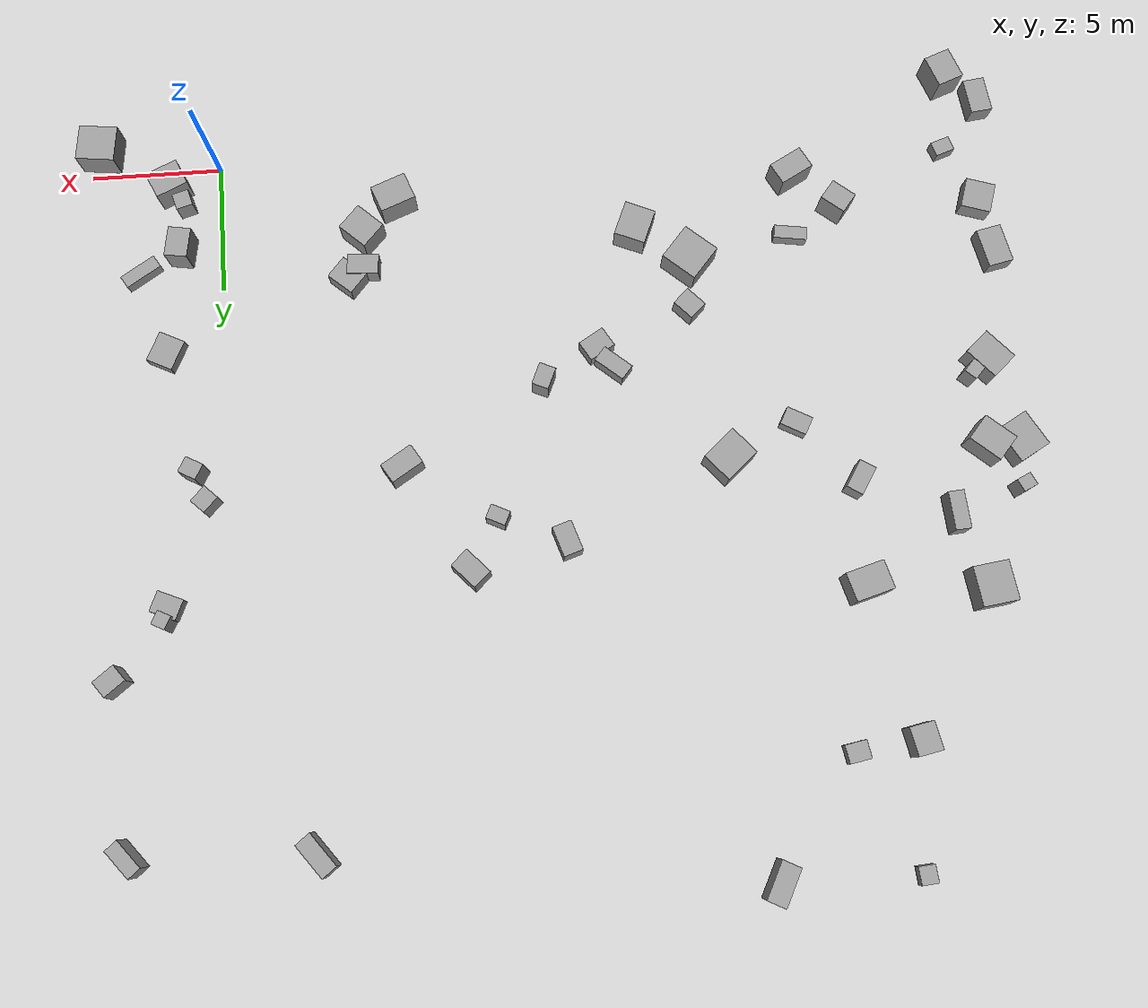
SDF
<sdf version="1.7">
 <world name="default">
  <model name="ground_plane">
   <static>1</static>
   <link name="link">
    <collision name="collision">
     <geometry><plane><normal>0 0 1</normal><size>100 100</size></plane></geometry>
     <surface><friction><ode><mu>100</mu><mu2>50</mu2></ode></friction></surface>
    </collision>
    <visual name="visual">
     <cast_shadows>0</cast_shadows>
     <geometry><plane><normal>0 0 1</normal><size>100 100</size></plane></geometry>
     <material>
      <script><uri>file://media/materials/scripts/gazebo.material</uri><name>Gazebo/Grey</name></script>
     </material>
    </visual>
   </link>
  </model>
  <model name="unit_box_3">
   <static>true</static>
   <pose>-18.853921231633112 28.278634280664065 0.5 0 -0 161.31031445125913</pose>
   <link name="link">
    <inertial>
     <mass>1</mass>
     <inertia>
      <ixx>0.166667</ixx>
      <ixy>0</ixy>
      <ixz>0</ixz>
      <iyy>0.166667</iyy>
      <iyz>0</iyz>
      <izz>0.166667</izz>
     </inertia>
    </inertial>
    <collision name="collision">
     <geometry><box><size>1.4690283998809486 0.7201848135264792 1.498329860531034</size></box></geometry>
    </collision>
    <visual name="visual">
     <geometry><box><size>1.4690283998809486 0.7201848135264792 1.498329860531034</size></box></geometry>
     <material>
      <script><name>Gazebo/Grey</name><uri>file://media/materials/scripts/gazebo.material</uri></script>
     </material>
    </visual>
   </link>
  </model>
  <model name="unit_box_4">
   <static>true</static>
   <pose>-29.22784455926808 3.5906391807255034 0.5 0 -0 254.1489944872461</pose>
   <link name="link">
    <inertial>
     <mass>1</mass>
     <inertia>
      <ixx>0.166667</ixx>
      <ixy>0</ixy>
      <ixz>0</ixz>
      <iyy>0.166667</iyy>
      <iyz>0</iyz>
      <izz>0.166667</izz>
     </inertia>
    </inertial>
    <collision name="collision">
     <geometry><box><size>1.1214604294550323 1.1558776555138264 0.8068584248671594</size></box></geometry>
    </collision>
    <visual name="visual">
     <geometry><box><size>1.1214604294550323 1.1558776555138264 0.8068584248671594</size></box></geometry>
     <material>
      <script><name>Gazebo/Grey</name><uri>file://media/materials/scripts/gazebo.material</uri></script>
     </material>
    </visual>
   </link>
  </model>
  <model name="unit_box_6">
   <static>true</static>
   <pose>-23.114549735129497 18.156944835991993 0.5 0 -0 80.38149467177092</pose>
   <link name="link">
    <inertial>
     <mass>1</mass>
     <inertia>
      <ixx>0.166667</ixx>
      <ixy>0</ixy>
      <ixz>0</ixz>
      <iyy>0.166667</iyy>
      <iyz>0</iyz>
      <izz>0.166667</izz>
     </inertia>
    </inertial>
    <collision name="collision">
     <geometry><box><size>1.0977249225586028 1.4722601884767523 1.4116412109805065</size></box></geometry>
    </collision>
    <visual name="visual">
     <geometry><box><size>1.0977249225586028 1.4722601884767523 1.4116412109805065</size></box></geometry>
     <material>
      <script><name>Gazebo/Grey</name><uri>file://media/materials/scripts/gazebo.material</uri></script>
     </material>
    </visual>
   </link>
  </model>
  <model name="unit_box_7">
   <static>true</static>
   <pose>-12.422805338567617 15.797731349955072 0.5 0 -0 243.78437469421218</pose>
   <link name="link">
    <inertial>
     <mass>1</mass>
     <inertia>
      <ixx>0.166667</ixx>
      <ixy>0</ixy>
      <ixz>0</ixz>
      <iyy>0.166667</iyy>
      <iyz>0</iyz>
      <izz>0.166667</izz>
     </inertia>
    </inertial>
    <collision name="collision">
     <geometry><box><size>1.1689401038444207 0.7425306193366392 1.0525273627679501</size></box></geometry>
    </collision>
    <visual name="visual">
     <geometry><box><size>1.1689401038444207 0.7425306193366392 1.0525273627679501</size></box></geometry>
     <material>
      <script><name>Gazebo/Grey</name><uri>file://media/materials/scripts/gazebo.material</uri></script>
     </material>
    </visual>
   </link>
  </model>
  <model name="unit_box_11">
   <static>true</static>
   <pose>-26.731967139765874 15.79381174776082 0.5 0 -0 48.758614556647814</pose>
   <link name="link">
    <inertial>
     <mass>1</mass>
     <inertia>
      <ixx>0.166667</ixx>
      <ixy>0</ixy>
      <ixz>0</ixz>
      <iyy>0.166667</iyy>
      <iyz>0</iyz>
      <izz>0.166667</izz>
     </inertia>
    </inertial>
    <collision name="collision">
     <geometry><box><size>1.4363798555520337 0.5857894299789224 1.0255808748022714</size></box></geometry>
    </collision>
    <visual name="visual">
     <geometry><box><size>1.4363798555520337 0.5857894299789224 1.0255808748022714</size></box></geometry>
     <material>
      <script><name>Gazebo/Grey</name><uri>file://media/materials/scripts/gazebo.material</uri></script>
     </material>
    </visual>
   </link>
  </model>
  <model name="unit_box_12">
   <static>true</static>
   <pose>4.544029123333701 -0.9721439150786608 0.5 0 -0 295.1919709288443</pose>
   <link name="link">
    <inertial>
     <mass>1</mass>
     <inertia>
      <ixx>0.166667</ixx>
      <ixy>0</ixy>
      <ixz>0</ixz>
      <iyy>0.166667</iyy>
      <iyz>0</iyz>
      <izz>0.166667</izz>
     </inertia>
    </inertial>
    <collision name="collision">
     <geometry><box><size>1.4717701889387484 1.3670608301999336 1.337696717127048</size></box></geometry>
    </collision>
    <visual name="visual">
     <geometry><box><size>1.4717701889387484 1.3670608301999336 1.337696717127048</size></box></geometry>
     <material>
      <script><name>Gazebo/Grey</name><uri>file://media/materials/scripts/gazebo.material</uri></script>
     </material>
    </visual>
   </link>
  </model>
  <model name="unit_box_16">
   <static>true</static>
   <pose>1.8598666684858856 0.7283571970139668 0.5 0 -0 67.96468003619916</pose>
   <link name="link">
    <inertial>
     <mass>1</mass>
     <inertia>
      <ixx>0.166667</ixx>
      <ixy>0</ixy>
      <ixz>0</ixz>
      <iyy>0.166667</iyy>
      <iyz>0</iyz>
      <izz>0.166667</izz>
     </inertia>
    </inertial>
    <collision name="collision">
     <geometry><box><size>1.0478265378507603 1.2723478876649952 1.3962599487506537</size></box></geometry>
    </collision>
    <visual name="visual">
     <geometry><box><size>1.0478265378507603 1.2723478876649952 1.3962599487506537</size></box></geometry>
     <material>
      <script><name>Gazebo/Grey</name><uri>file://media/materials/scripts/gazebo.material</uri></script>
     </material>
    </visual>
   </link>
  </model>
  <model name="unit_box_23">
   <static>true</static>
   <pose>-27.597285127594194 18.573005559899144 0.5 0 -0 22.117648178212434</pose>
   <link name="link">
    <inertial>
     <mass>1</mass>
     <inertia>
      <ixx>0.166667</ixx>
      <ixy>0</ixy>
      <ixz>0</ixz>
      <iyy>0.166667</iyy>
      <iyz>0</iyz>
      <izz>0.166667</izz>
     </inertia>
    </inertial>
    <collision name="collision">
     <geometry><box><size>1.3419519475900668 1.4863007726982276 1.362194990856641</size></box></geometry>
    </collision>
    <visual name="visual">
     <geometry><box><size>1.3419519475900668 1.4863007726982276 1.362194990856641</size></box></geometry>
     <material>
      <script><name>Gazebo/Grey</name><uri>file://media/materials/scripts/gazebo.material</uri></script>
     </material>
    </visual>
   </link>
  </model>
  <model name="unit_box_25">
   <static>true</static>
   <pose>-5.481367037540078 4.659173477378474 0.5 0 -0 152.3028976642726</pose>
   <link name="link">
    <inertial>
     <mass>1</mass>
     <inertia>
      <ixx>0.166667</ixx>
      <ixy>0</ixy>
      <ixz>0</ixz>
      <iyy>0.166667</iyy>
      <iyz>0</iyz>
      <izz>0.166667</izz>
     </inertia>
    </inertial>
    <collision name="collision">
     <geometry><box><size>0.7774207279172025 1.1902266741369176 0.8726082648236624</size></box></geometry>
    </collision>
    <visual name="visual">
     <geometry><box><size>0.7774207279172025 1.1902266741369176 0.8726082648236624</size></box></geometry>
     <material>
      <script><name>Gazebo/Grey</name><uri>file://media/materials/scripts/gazebo.material</uri></script>
     </material>
    </visual>
   </link>
  </model>
  <model name="unit_box_26">
   <static>true</static>
   <pose>-14.091392155086497 8.478652632987668 0.5 0 -0 110.48400537690175</pose>
   <link name="link">
    <inertial>
     <mass>1</mass>
     <inertia>
      <ixx>0.166667</ixx>
      <ixy>0</ixy>
      <ixz>0</ixz>
      <iyy>0.166667</iyy>
      <iyz>0</iyz>
      <izz>0.166667</izz>
     </inertia>
    </inertial>
    <collision name="collision">
     <geometry><box><size>1.061084775640069 0.8073565125365411 0.7287802840965566</size></box></geometry>
    </collision>
    <visual name="visual">
     <geometry><box><size>1.061084775640069 0.8073565125365411 0.7287802840965566</size></box></geometry>
     <material>
      <script><name>Gazebo/Grey</name><uri>file://media/materials/scripts/gazebo.material</uri></script>
     </material>
    </visual>
   </link>
  </model>
  <model name="unit_box_29">
   <static>true</static>
   <pose>-17.90025591506668 5.190496679094579 0.5 0 -0 139.07926550696132</pose>
   <link name="link">
    <inertial>
     <mass>1</mass>
     <inertia>
      <ixx>0.166667</ixx>
      <ixy>0</ixy>
      <ixz>0</ixz>
      <iyy>0.166667</iyy>
      <iyz>0</iyz>
      <izz>0.166667</izz>
     </inertia>
    </inertial>
    <collision name="collision">
     <geometry><box><size>1.485671787790575 1.4774349979943575 1.292205282133597</size></box></geometry>
    </collision>
    <visual name="visual">
     <geometry><box><size>1.485671787790575 1.4774349979943575 1.292205282133597</size></box></geometry>
     <material>
      <script><name>Gazebo/Grey</name><uri>file://media/materials/scripts/gazebo.material</uri></script>
     </material>
    </visual>
   </link>
  </model>
  <model name="unit_box_33">
   <static>true</static>
   <pose>-5.511667450780312 3.194595837450258 0.5 0 -0 305.5570186294524</pose>
   <link name="link">
    <inertial>
     <mass>1</mass>
     <inertia>
      <ixx>0.166667</ixx>
      <ixy>0</ixy>
      <ixz>0</ixz>
      <iyy>0.166667</iyy>
      <iyz>0</iyz>
      <izz>0.166667</izz>
     </inertia>
    </inertial>
    <collision name="collision">
     <geometry><box><size>1.1105525428854028 1.253953468150423 1.2738044694016213</size></box></geometry>
    </collision>
    <visual name="visual">
     <geometry><box><size>1.1105525428854028 1.253953468150423 1.2738044694016213</size></box></geometry>
     <material>
      <script><name>Gazebo/Grey</name><uri>file://media/materials/scripts/gazebo.material</uri></script>
     </material>
    </visual>
   </link>
  </model>
  <model name="unit_box_35">
   <static>true</static>
   <pose>0.678492524246014 13.369248958521418 0.5 0 -0 168.87257113426827</pose>
   <link name="link">
    <inertial>
     <mass>1</mass>
     <inertia>
      <ixx>0.166667</ixx>
      <ixy>0</ixy>
      <ixz>0</ixz>
      <iyy>0.166667</iyy>
      <iyz>0</iyz>
      <izz>0.166667</izz>
     </inertia>
    </inertial>
    <collision name="collision">
     <geometry><box><size>0.6761072738342774 0.7393445072908521 0.9739042739844633</size></box></geometry>
    </collision>
    <visual name="visual">
     <geometry><box><size>0.6761072738342774 0.7393445072908521 0.9739042739844633</size></box></geometry>
     <material>
      <script><name>Gazebo/Grey</name><uri>file://media/materials/scripts/gazebo.material</uri></script>
     </material>
    </visual>
   </link>
  </model>
  <model name="unit_box_40">
   <static>true</static>
   <pose>-21.86411333028712 4.532216318491763 0.5 0 -0 18.69643245826358</pose>
   <link name="link">
    <inertial>
     <mass>1</mass>
     <inertia>
      <ixx>0.166667</ixx>
      <ixy>0</ixy>
      <ixz>0</ixz>
      <iyy>0.166667</iyy>
      <iyz>0</iyz>
      <izz>0.166667</izz>
     </inertia>
    </inertial>
    <collision name="collision">
     <geometry><box><size>1.2508855788245739 0.5024090201287064 0.5763556090959931</size></box></geometry>
    </collision>
    <visual name="visual">
     <geometry><box><size>1.2508855788245739 0.5024090201287064 0.5763556090959931</size></box></geometry>
     <material>
      <script><name>Gazebo/Grey</name><uri>file://media/materials/scripts/gazebo.material</uri></script>
     </material>
    </visual>
   </link>
  </model>
  <model name="unit_box_43">
   <static>true</static>
   <pose>-24.37969434413171 23.804394061631676 0.5 0 -0 86.58422861602659</pose>
   <link name="link">
    <inertial>
     <mass>1</mass>
     <inertia>
      <ixx>0.166667</ixx>
      <ixy>0</ixy>
      <ixz>0</ixz>
      <iyy>0.166667</iyy>
      <iyz>0</iyz>
      <izz>0.166667</izz>
     </inertia>
    </inertial>
    <collision name="collision">
     <geometry><box><size>1.0523362840561115 0.9248986200043025 1.23594289691265</size></box></geometry>
    </collision>
    <visual name="visual">
     <geometry><box><size>1.0523362840561115 0.9248986200043025 1.23594289691265</size></box></geometry>
     <material>
      <script><name>Gazebo/Grey</name><uri>file://media/materials/scripts/gazebo.material</uri></script>
     </material>
    </visual>
   </link>
  </model>
  <model name="unit_box_49">
   <static>true</static>
   <pose>-6.581165153028749 12.596384681062567 0.5 0 -0 187.47781524273174</pose>
   <link name="link">
    <inertial>
     <mass>1</mass>
     <inertia>
      <ixx>0.166667</ixx>
      <ixy>0</ixy>
      <ixz>0</ixz>
      <iyy>0.166667</iyy>
      <iyz>0</iyz>
      <izz>0.166667</izz>
     </inertia>
    </inertial>
    <collision name="collision">
     <geometry><box><size>0.7990465833768061 1.3326818245599337 1.212823643826479</size></box></geometry>
    </collision>
    <visual name="visual">
     <geometry><box><size>0.7990465833768061 1.3326818245599337 1.212823643826479</size></box></geometry>
     <material>
      <script><name>Gazebo/Grey</name><uri>file://media/materials/scripts/gazebo.material</uri></script>
     </material>
    </visual>
   </link>
  </model>
  <model name="unit_box_70">
   <static>true</static>
   <pose>-17.717456122533285 7.147092081795876 0.5 0 -0 204.95529359130148</pose>
   <link name="link">
    <inertial>
     <mass>1</mass>
     <inertia>
      <ixx>0.166667</ixx>
      <ixy>0</ixy>
      <ixz>0</ixz>
      <iyy>0.166667</iyy>
      <iyz>0</iyz>
      <izz>0.166667</izz>
     </inertia>
    </inertial>
    <collision name="collision">
     <geometry><box><size>0.7701676243896942 0.8898055774902398 0.8535107273577994</size></box></geometry>
    </collision>
    <visual name="visual">
     <geometry><box><size>0.7701676243896942 0.8898055774902398 0.8535107273577994</size></box></geometry>
     <material>
      <script><name>Gazebo/Grey</name><uri>file://media/materials/scripts/gazebo.material</uri></script>
     </material>
    </visual>
   </link>
  </model>
  <model name="unit_box_77">
   <static>true</static>
   <pose>-12.01386362423742 9.659705644536729 0.5 0 -0 172.36348515942709</pose>
   <link name="link">
    <inertial>
     <mass>1</mass>
     <inertia>
      <ixx>0.166667</ixx>
      <ixy>0</ixy>
      <ixz>0</ixz>
      <iyy>0.166667</iyy>
      <iyz>0</iyz>
      <izz>0.166667</izz>
     </inertia>
    </inertial>
    <collision name="collision">
     <geometry><box><size>0.6468557255252442 0.8533878076140515 1.3305321638890253</size></box></geometry>
    </collision>
    <visual name="visual">
     <geometry><box><size>0.6468557255252442 0.8533878076140515 1.3305321638890253</size></box></geometry>
     <material>
      <script><name>Gazebo/Grey</name><uri>file://media/materials/scripts/gazebo.material</uri></script>
     </material>
    </visual>
   </link>
  </model>
  <model name="unit_box_78">
   <static>true</static>
   <pose>4.1255800377908685 19.717239376948847 0.5 0 -0 198.56544823945464</pose>
   <link name="link">
    <inertial>
     <mass>1</mass>
     <inertia>
      <ixx>0.166667</ixx>
      <ixy>0</ixy>
      <ixz>0</ixz>
      <iyy>0.166667</iyy>
      <iyz>0</iyz>
      <izz>0.166667</izz>
     </inertia>
    </inertial>
    <collision name="collision">
     <geometry><box><size>0.9380882976517099 0.7144058606812166 1.2068982821265566</size></box></geometry>
    </collision>
    <visual name="visual">
     <geometry><box><size>0.9380882976517099 0.7144058606812166 1.2068982821265566</size></box></geometry>
     <material>
      <script><name>Gazebo/Grey</name><uri>file://media/materials/scripts/gazebo.material</uri></script>
     </material>
    </visual>
   </link>
  </model>
  <model name="unit_box_80">
   <static>true</static>
   <pose>2.981766157170668 4.29971626691129 0.5 0 -0 119.94046156214876</pose>
   <link name="link">
    <inertial>
     <mass>1</mass>
     <inertia>
      <ixx>0.166667</ixx>
      <ixy>0</ixy>
      <ixz>0</ixz>
      <iyy>0.166667</iyy>
      <iyz>0</iyz>
      <izz>0.166667</izz>
     </inertia>
    </inertial>
    <collision name="collision">
     <geometry><box><size>1.4732681531741105 0.5088871160955611 0.5376993843242384</size></box></geometry>
    </collision>
    <visual name="visual">
     <geometry><box><size>1.4732681531741105 0.5088871160955611 0.5376993843242384</size></box></geometry>
     <material>
      <script><name>Gazebo/Grey</name><uri>file://media/materials/scripts/gazebo.material</uri></script>
     </material>
    </visual>
   </link>
  </model>
  <model name="unit_box_84">
   <static>true</static>
   <pose>-18.621768727837267 13.138100495534104 0.5 0 -0 112.23096265900382</pose>
   <link name="link">
    <inertial>
     <mass>1</mass>
     <inertia>
      <ixx>0.166667</ixx>
      <ixy>0</ixy>
      <ixz>0</ixz>
      <iyy>0.166667</iyy>
      <iyz>0</iyz>
      <izz>0.166667</izz>
     </inertia>
    </inertial>
    <collision name="collision">
     <geometry><box><size>1.2412156149434788 1.4915084240456782 1.323049661830123</size></box></geometry>
    </collision>
    <visual name="visual">
     <geometry><box><size>1.2412156149434788 1.4915084240456782 1.323049661830123</size></box></geometry>
     <material>
      <script><name>Gazebo/Grey</name><uri>file://media/materials/scripts/gazebo.material</uri></script>
     </material>
    </visual>
   </link>
  </model>
  <model name="unit_box_95">
   <static>true</static>
   <pose>1.113761388602537 12.21235437643643 0.5 0 -0 239.81638188854825</pose>
   <link name="link">
    <inertial>
     <mass>1</mass>
     <inertia>
      <ixx>0.166667</ixx>
      <ixy>0</ixy>
      <ixz>0</ixz>
      <iyy>0.166667</iyy>
      <iyz>0</iyz>
      <izz>0.166667</izz>
     </inertia>
    </inertial>
    <collision name="collision">
     <geometry><box><size>0.6291692963897011 0.7211393623140755 1.3426256711528906</size></box></geometry>
    </collision>
    <visual name="visual">
     <geometry><box><size>0.6291692963897011 0.7211393623140755 1.3426256711528906</size></box></geometry>
     <material>
      <script><name>Gazebo/Grey</name><uri>file://media/materials/scripts/gazebo.material</uri></script>
     </material>
    </visual>
   </link>
  </model>
  <model name="unit_box_97">
   <static>true</static>
   <pose>-15.926408604792845 3.811165898291705 0.5 0 -0 342.0235476226914</pose>
   <link name="link">
    <inertial>
     <mass>1</mass>
     <inertia>
      <ixx>0.166667</ixx>
      <ixy>0</ixy>
      <ixz>0</ixz>
      <iyy>0.166667</iyy>
      <iyz>0</iyz>
      <izz>0.166667</izz>
     </inertia>
    </inertial>
    <collision name="collision">
     <geometry><box><size>1.1998592351835264 1.3561594408412387 1.2252312904298694</size></box></geometry>
    </collision>
    <visual name="visual">
     <geometry><box><size>1.1998592351835264 1.3561594408412387 1.2252312904298694</size></box></geometry>
     <material>
      <script><name>Gazebo/Grey</name><uri>file://media/materials/scripts/gazebo.material</uri></script>
     </material>
    </visual>
   </link>
  </model>
  <model name="unit_box_98">
   <static>true</static>
   <pose>-29.29269562830697 14.973936393941486 0.5 0 -0 259.61438709020587</pose>
   <link name="link">
    <inertial>
     <mass>1</mass>
     <inertia>
      <ixx>0.166667</ixx>
      <ixy>0</ixy>
      <ixz>0</ixz>
      <iyy>0.166667</iyy>
      <iyz>0</iyz>
      <izz>0.166667</izz>
     </inertia>
    </inertial>
    <collision name="collision">
     <geometry><box><size>0.5040127441227579 0.5653306244014654 1.2853933798132215</size></box></geometry>
    </collision>
    <visual name="visual">
     <geometry><box><size>0.5040127441227579 0.5653306244014654 1.2853933798132215</size></box></geometry>
     <material>
      <script><name>Gazebo/Grey</name><uri>file://media/materials/scripts/gazebo.material</uri></script>
     </material>
    </visual>
   </link>
  </model>
  <model name="unit_box_99">
   <static>true</static>
   <pose>-23.324265434503957 14.31720842510881 0.5 0 -0 296.31266129401945</pose>
   <link name="link">
    <inertial>
     <mass>1</mass>
     <inertia>
      <ixx>0.166667</ixx>
      <ixy>0</ixy>
      <ixz>0</ixz>
      <iyy>0.166667</iyy>
      <iyz>0</iyz>
      <izz>0.166667</izz>
     </inertia>
    </inertial>
    <collision name="collision">
     <geometry><box><size>1.134697515819274 0.6542959617221945 0.985303567317266</size></box></geometry>
    </collision>
    <visual name="visual">
     <geometry><box><size>1.134697515819274 0.6542959617221945 0.985303567317266</size></box></geometry>
     <material>
      <script><name>Gazebo/Grey</name><uri>file://media/materials/scripts/gazebo.material</uri></script>
     </material>
    </visual>
   </link>
  </model>
  <model name="unit_box_101">
   <static>true</static>
   <pose>-22.125439374179468 1.9525701031263658 0.5 0 -0 174.84863145433584</pose>
   <link name="link">
    <inertial>
     <mass>1</mass>
     <inertia>
      <ixx>0.166667</ixx>
      <ixy>0</ixy>
      <ixz>0</ixz>
      <iyy>0.166667</iyy>
      <iyz>0</iyz>
      <izz>0.166667</izz>
     </inertia>
    </inertial>
    <collision name="collision">
     <geometry><box><size>0.8751171954471301 1.3544760295381189 1.374486831029929</size></box></geometry>
    </collision>
    <visual name="visual">
     <geometry><box><size>0.8751171954471301 1.3544760295381189 1.374486831029929</size></box></geometry>
     <material>
      <script><name>Gazebo/Grey</name><uri>file://media/materials/scripts/gazebo.material</uri></script>
     </material>
    </visual>
   </link>
  </model>
  <model name="unit_box_104">
   <static>true</static>
   <pose>-23.911323191258035 28.372224756080143 0.5 0 -0 34.63734347197104</pose>
   <link name="link">
    <inertial>
     <mass>1</mass>
     <inertia>
      <ixx>0.166667</ixx>
      <ixy>0</ixy>
      <ixz>0</ixz>
      <iyy>0.166667</iyy>
      <iyz>0</iyz>
      <izz>0.166667</izz>
     </inertia>
    </inertial>
    <collision name="collision">
     <geometry><box><size>0.6082445069596962 0.6428275583689341 0.5147418536480884</size></box></geometry>
    </collision>
    <visual name="visual">
     <geometry><box><size>0.6082445069596962 0.6428275583689341 0.5147418536480884</size></box></geometry>
     <material>
      <script><name>Gazebo/Grey</name><uri>file://media/materials/scripts/gazebo.material</uri></script>
     </material>
    </visual>
   </link>
  </model>
  <model name="unit_box_110">
   <static>true</static>
   <pose>-22.020782537548342 24.0747987661289 0.5 0 -0 298.62509261629424</pose>
   <link name="link">
    <inertial>
     <mass>1</mass>
     <inertia>
      <ixx>0.166667</ixx>
      <ixy>0</ixy>
      <ixz>0</ixz>
      <iyy>0.166667</iyy>
      <iyz>0</iyz>
      <izz>0.166667</izz>
     </inertia>
    </inertial>
    <collision name="collision">
     <geometry><box><size>0.8111232362729943 0.6740576335553501 0.5394253170259066</size></box></geometry>
    </collision>
    <visual name="visual">
     <geometry><box><size>0.8111232362729943 0.6740576335553501 0.5394253170259066</size></box></geometry>
     <material>
      <script><name>Gazebo/Grey</name><uri>file://media/materials/scripts/gazebo.material</uri></script>
     </material>
    </visual>
   </link>
  </model>
  <model name="unit_box_115">
   <static>true</static>
   <pose>-23.765640556575974 3.376581741869799 0.5 0 -0 164.2425482891484</pose>
   <link name="link">
    <inertial>
     <mass>1</mass>
     <inertia>
      <ixx>0.166667</ixx>
      <ixy>0</ixy>
      <ixz>0</ixz>
      <iyy>0.166667</iyy>
      <iyz>0</iyz>
      <izz>0.166667</izz>
     </inertia>
    </inertial>
    <collision name="collision">
     <geometry><box><size>0.8379569302933911 1.0194894719887424 1.491828581823275</size></box></geometry>
    </collision>
    <visual name="visual">
     <geometry><box><size>0.8379569302933911 1.0194894719887424 1.491828581823275</size></box></geometry>
     <material>
      <script><name>Gazebo/Grey</name><uri>file://media/materials/scripts/gazebo.material</uri></script>
     </material>
    </visual>
   </link>
  </model>
  <model name="unit_box_118">
   <static>true</static>
   <pose>-29.46180501199858 13.22932845878988 0.5 0 -0 242.4096474290398</pose>
   <link name="link">
    <inertial>
     <mass>1</mass>
     <inertia>
      <ixx>0.166667</ixx>
      <ixy>0</ixy>
      <ixz>0</ixz>
      <iyy>0.166667</iyy>
      <iyz>0</iyz>
      <izz>0.166667</izz>
     </inertia>
    </inertial>
    <collision name="collision">
     <geometry><box><size>1.2732716141481764 1.4616509791591796 1.048910473329639</size></box></geometry>
    </collision>
    <visual name="visual">
     <geometry><box><size>1.2732716141481764 1.4616509791591796 1.048910473329639</size></box></geometry>
     <material>
      <script><name>Gazebo/Grey</name><uri>file://media/materials/scripts/gazebo.material</uri></script>
     </material>
    </visual>
   </link>
  </model>
  <model name="unit_box_121">
   <static>true</static>
   <pose>1.3153906839776965 1.543375297962971 0.5 0 -0 228.04933242055648</pose>
   <link name="link">
    <inertial>
     <mass>1</mass>
     <inertia>
      <ixx>0.166667</ixx>
      <ixy>0</ixy>
      <ixz>0</ixz>
      <iyy>0.166667</iyy>
      <iyz>0</iyz>
      <izz>0.166667</izz>
     </inertia>
    </inertial>
    <collision name="collision">
     <geometry><box><size>0.6408275036781422 0.6295109855982799 0.9432115190573668</size></box></geometry>
    </collision>
    <visual name="visual">
     <geometry><box><size>0.6408275036781422 0.6295109855982799 0.9432115190573668</size></box></geometry>
     <material>
      <script><name>Gazebo/Grey</name><uri>file://media/materials/scripts/gazebo.material</uri></script>
     </material>
    </visual>
   </link>
  </model>
  <model name="unit_box_122">
   <static>true</static>
   <pose>2.143387878640084 17.13366910834462 0.5 0 -0 54.56547269574818</pose>
   <link name="link">
    <inertial>
     <mass>1</mass>
     <inertia>
      <ixx>0.166667</ixx>
      <ixy>0</ixy>
      <ixz>0</ixz>
      <iyy>0.166667</iyy>
      <iyz>0</iyz>
      <izz>0.166667</izz>
     </inertia>
    </inertial>
    <collision name="collision">
     <geometry><box><size>0.7965720764853422 1.0239980049940742 0.5786807970066097</size></box></geometry>
    </collision>
    <visual name="visual">
     <geometry><box><size>0.7965720764853422 1.0239980049940742 0.5786807970066097</size></box></geometry>
     <material>
      <script><name>Gazebo/Grey</name><uri>file://media/materials/scripts/gazebo.material</uri></script>
     </material>
    </visual>
   </link>
  </model>
  <model name="unit_box_123">
   <static>true</static>
   <pose>-29.803880941077093 -0.5997143702955441 0.5 0 -0 292.2850163034607</pose>
   <link name="link">
    <inertial>
     <mass>1</mass>
     <inertia>
      <ixx>0.166667</ixx>
      <ixy>0</ixy>
      <ixz>0</ixz>
      <iyy>0.166667</iyy>
      <iyz>0</iyz>
      <izz>0.166667</izz>
     </inertia>
    </inertial>
    <collision name="collision">
     <geometry><box><size>0.8190726011646168 1.3555804500295159 0.8015979291414764</size></box></geometry>
    </collision>
    <visual name="visual">
     <geometry><box><size>0.8190726011646168 1.3555804500295159 0.8015979291414764</size></box></geometry>
     <material>
      <script><name>Gazebo/Grey</name><uri>file://media/materials/scripts/gazebo.material</uri></script>
     </material>
    </visual>
   </link>
  </model>
  <model name="unit_box_124">
   <static>true</static>
   <pose>-28.538771739814933 -1.7161687321076897 0.5 0 -0 85.17013520506535</pose>
   <link name="link">
    <inertial>
     <mass>1</mass>
     <inertia>
      <ixx>0.166667</ixx>
      <ixy>0</ixy>
      <ixz>0</ixz>
      <iyy>0.166667</iyy>
      <iyz>0</iyz>
      <izz>0.166667</izz>
     </inertia>
    </inertial>
    <collision name="collision">
     <geometry><box><size>1.0288582194817348 1.2305512855887493 1.4940775760787481</size></box></geometry>
    </collision>
    <visual name="visual">
     <geometry><box><size>1.0288582194817348 1.2305512855887493 1.4940775760787481</size></box></geometry>
     <material>
      <script><name>Gazebo/Grey</name><uri>file://media/materials/scripts/gazebo.material</uri></script>
     </material>
    </visual>
   </link>
  </model>
  <model name="unit_box_133">
   <static>true</static>
   <pose>2.2587205233761694 17.684892078394483 0.5 0 -0 68.64157884634693</pose>
   <link name="link">
    <inertial>
     <mass>1</mass>
     <inertia>
      <ixx>0.166667</ixx>
      <ixy>0</ixy>
      <ixz>0</ixz>
      <iyy>0.166667</iyy>
      <iyz>0</iyz>
      <izz>0.166667</izz>
     </inertia>
    </inertial>
    <collision name="collision">
     <geometry><box><size>0.5367753940455561 0.5410271655230013 1.2188874317850869</size></box></geometry>
    </collision>
    <visual name="visual">
     <geometry><box><size>0.5367753940455561 0.5410271655230013 1.2188874317850869</size></box></geometry>
     <material>
      <script><name>Gazebo/Grey</name><uri>file://media/materials/scripts/gazebo.material</uri></script>
     </material>
    </visual>
   </link>
  </model>
  <model name="unit_box_140">
   <static>true</static>
   <pose>-29.55927022973458 5.674358720284822 0.5 0 -0 342.637834967407</pose>
   <link name="link">
    <inertial>
     <mass>1</mass>
     <inertia>
      <ixx>0.166667</ixx>
      <ixy>0</ixy>
      <ixz>0</ixz>
      <iyy>0.166667</iyy>
      <iyz>0</iyz>
      <izz>0.166667</izz>
     </inertia>
    </inertial>
    <collision name="collision">
     <geometry><box><size>0.9551876048067868 1.4788199767196284 0.7766203223386264</size></box></geometry>
    </collision>
    <visual name="visual">
     <geometry><box><size>0.9551876048067868 1.4788199767196284 0.7766203223386264</size></box></geometry>
     <material>
      <script><name>Gazebo/Grey</name><uri>file://media/materials/scripts/gazebo.material</uri></script>
     </material>
    </visual>
   </link>
  </model>
  <model name="unit_box_141">
   <static>true</static>
   <pose>-28.29789230665979 13.227981944790109 0.5 0 -0 139.07930854092044</pose>
   <link name="link">
    <inertial>
     <mass>1</mass>
     <inertia>
      <ixx>0.166667</ixx>
      <ixy>0</ixy>
      <ixz>0</ixz>
      <iyy>0.166667</iyy>
      <iyz>0</iyz>
      <izz>0.166667</izz>
     </inertia>
    </inertial>
    <collision name="collision">
     <geometry><box><size>1.0868577683232252 1.3553870621625732 1.3329834128740459</size></box></geometry>
    </collision>
    <visual name="visual">
     <geometry><box><size>1.0868577683232252 1.3553870621625732 1.3329834128740459</size></box></geometry>
     <material>
      <script><name>Gazebo/Grey</name><uri>file://media/materials/scripts/gazebo.material</uri></script>
     </material>
    </visual>
   </link>
  </model>
  <model name="unit_box_148">
   <static>true</static>
   <pose>-4.879799665119183 5.0578679531905095 0.5 0 -0 129.66144959733197</pose>
   <link name="link">
    <inertial>
     <mass>1</mass>
     <inertia>
      <ixx>0.166667</ixx>
      <ixy>0</ixy>
      <ixz>0</ixz>
      <iyy>0.166667</iyy>
      <iyz>0</iyz>
      <izz>0.166667</izz>
     </inertia>
    </inertial>
    <collision name="collision">
     <geometry><box><size>0.9412187469987067 1.1276024112240828 0.8217330478429614</size></box></geometry>
    </collision>
    <visual name="visual">
     <geometry><box><size>0.9412187469987067 1.1276024112240828 0.8217330478429614</size></box></geometry>
     <material>
      <script><name>Gazebo/Grey</name><uri>file://media/materials/scripts/gazebo.material</uri></script>
     </material>
    </visual>
   </link>
  </model>
  <model name="unit_box_149">
   <static>true</static>
   <pose>-28.17526652247057 1.4058309289369149 0.5 0 -0 151.11665762898227</pose>
   <link name="link">
    <inertial>
     <mass>1</mass>
     <inertia>
      <ixx>0.166667</ixx>
      <ixy>0</ixy>
      <ixz>0</ixz>
      <iyy>0.166667</iyy>
      <iyz>0</iyz>
      <izz>0.166667</izz>
     </inertia>
    </inertial>
    <collision name="collision">
     <geometry><box><size>0.7432618632974858 0.562132127580767 0.5573671670445903</size></box></geometry>
    </collision>
    <visual name="visual">
     <geometry><box><size>0.7432618632974858 0.562132127580767 0.5573671670445903</size></box></geometry>
     <material>
      <script><name>Gazebo/Grey</name><uri>file://media/materials/scripts/gazebo.material</uri></script>
     </material>
    </visual>
   </link>
  </model>
  <model name="unit_box_164">
   <static>true</static>
   <pose>-21.23604779044684 11.97880910379569 0.5 0 -0 327.79409906604775</pose>
   <link name="link">
    <inertial>
     <mass>1</mass>
     <inertia>
      <ixx>0.166667</ixx>
      <ixy>0</ixy>
      <ixz>0</ixz>
      <iyy>0.166667</iyy>
      <iyz>0</iyz>
      <izz>0.166667</izz>
     </inertia>
    </inertial>
    <collision name="collision">
     <geometry><box><size>0.7033697079696202 1.0152675538921185 0.642886591898264</size></box></geometry>
    </collision>
    <visual name="visual">
     <geometry><box><size>0.7033697079696202 1.0152675538921185 0.642886591898264</size></box></geometry>
     <material>
      <script><name>Gazebo/Grey</name><uri>file://media/materials/scripts/gazebo.material</uri></script>
     </material>
    </visual>
   </link>
  </model>
  <model name="unit_box_165">
   <static>true</static>
   <pose>3.6413264418399436 25.81811340485548 0.5 0 -0 211.17141185594488</pose>
   <link name="link">
    <inertial>
     <mass>1</mass>
     <inertia>
      <ixx>0.166667</ixx>
      <ixy>0</ixy>
      <ixz>0</ixz>
      <iyy>0.166667</iyy>
      <iyz>0</iyz>
      <izz>0.166667</izz>
     </inertia>
    </inertial>
    <collision name="collision">
     <geometry><box><size>0.5531381997163283 1.2775207100768027 1.387568684651976</size></box></geometry>
    </collision>
    <visual name="visual">
     <geometry><box><size>0.5531381997163283 1.2775207100768027 1.387568684651976</size></box></geometry>
     <material>
      <script><name>Gazebo/Grey</name><uri>file://media/materials/scripts/gazebo.material</uri></script>
     </material>
    </visual>
   </link>
  </model>
  <model name="unit_box_166">
   <static>true</static>
   <pose>-6.784566042528162 1.9547930315541961 0.5 0 -0 292.5367643370702</pose>
   <link name="link">
    <inertial>
     <mass>1</mass>
     <inertia>
      <ixx>0.166667</ixx>
      <ixy>0</ixy>
      <ixz>0</ixz>
      <iyy>0.166667</iyy>
      <iyz>0</iyz>
      <izz>0.166667</izz>
     </inertia>
    </inertial>
    <collision name="collision">
     <geometry><box><size>1.3982895455784594 1.0662105010335514 1.4577383985285115</size></box></geometry>
    </collision>
    <visual name="visual">
     <geometry><box><size>1.3982895455784594 1.0662105010335514 1.4577383985285115</size></box></geometry>
     <material>
      <script><name>Gazebo/Grey</name><uri>file://media/materials/scripts/gazebo.material</uri></script>
     </material>
    </visual>
   </link>
  </model>
  <model name="unit_box_169">
   <static>true</static>
   <pose>-9.96967015787207 14.73820833859012 0.5 0 -0 318.42093438089506</pose>
   <link name="link">
    <inertial>
     <mass>1</mass>
     <inertia>
      <ixx>0.166667</ixx>
      <ixy>0</ixy>
      <ixz>0</ixz>
      <iyy>0.166667</iyy>
      <iyz>0</iyz>
      <izz>0.166667</izz>
     </inertia>
    </inertial>
    <collision name="collision">
     <geometry><box><size>0.5520091909199929 0.7590554187859258 1.0306280019463974</size></box></geometry>
    </collision>
    <visual name="visual">
     <geometry><box><size>0.5520091909199929 0.7590554187859258 1.0306280019463974</size></box></geometry>
     <material>
      <script><name>Gazebo/Grey</name><uri>file://media/materials/scripts/gazebo.material</uri></script>
     </material>
    </visual>
   </link>
  </model>
  <model name="unit_box_170">
   <static>true</static>
   <pose>-8.867589951835473 16.66272167344726 0.5 0 -0 336.8981579109096</pose>
   <link name="link">
    <inertial>
     <mass>1</mass>
     <inertia>
      <ixx>0.166667</ixx>
      <ixy>0</ixy>
      <ixz>0</ixz>
      <iyy>0.166667</iyy>
      <iyz>0</iyz>
      <izz>0.166667</izz>
     </inertia>
    </inertial>
    <collision name="collision">
     <geometry><box><size>0.8140583223645514 1.1855405534767387 1.4762001642191014</size></box></geometry>
    </collision>
    <visual name="visual">
     <geometry><box><size>0.8140583223645514 1.1855405534767387 1.4762001642191014</size></box></geometry>
     <material>
      <script><name>Gazebo/Grey</name><uri>file://media/materials/scripts/gazebo.material</uri></script>
     </material>
    </visual>
   </link>
  </model>
  <model name="unit_box_178">
   <static>true</static>
   <pose>2.065948204659591 7.526737744289733 0.5 0 -0 291.70902600706813</pose>
   <link name="link">
    <inertial>
     <mass>1</mass>
     <inertia>
      <ixx>0.166667</ixx>
      <ixy>0</ixy>
      <ixz>0</ixz>
      <iyy>0.166667</iyy>
      <iyz>0</iyz>
      <izz>0.166667</izz>
     </inertia>
    </inertial>
    <collision name="collision">
     <geometry><box><size>1.0379496083233455 1.1827240243302637 0.5619879431898526</size></box></geometry>
    </collision>
    <visual name="visual">
     <geometry><box><size>1.0379496083233455 1.1827240243302637 0.5619879431898526</size></box></geometry>
     <material>
      <script><name>Gazebo/Grey</name><uri>file://media/materials/scripts/gazebo.material</uri></script>
     </material>
    </visual>
   </link>
  </model>
  <model name="unit_box_182">
   <static>true</static>
   <pose>-28.041111323806803 10.550199300779852 0.5 0 -0 164.19426012360694</pose>
   <link name="link">
    <inertial>
     <mass>1</mass>
     <inertia>
      <ixx>0.166667</ixx>
      <ixy>0</ixy>
      <ixz>0</ixz>
      <iyy>0.166667</iyy>
      <iyz>0</iyz>
      <izz>0.166667</izz>
     </inertia>
    </inertial>
    <collision name="collision">
     <geometry><box><size>0.6048844067738198 0.5153327961772338 1.1826803326328328</size></box></geometry>
    </collision>
    <visual name="visual">
     <geometry><box><size>0.6048844067738198 0.5153327961772338 1.1826803326328328</size></box></geometry>
     <material>
      <script><name>Gazebo/Grey</name><uri>file://media/materials/scripts/gazebo.material</uri></script>
     </material>
    </visual>
   </link>
  </model>
  <model name="unit_box_190">
   <static>true</static>
   <pose>-28.702853366847215 10.006923394535363 0.5 0 -0 217.49186654527523</pose>
   <link name="link">
    <inertial>
     <mass>1</mass>
     <inertia>
      <ixx>0.166667</ixx>
      <ixy>0</ixy>
      <ixz>0</ixz>
      <iyy>0.166667</iyy>
      <iyz>0</iyz>
      <izz>0.166667</izz>
     </inertia>
    </inertial>
    <collision name="collision">
     <geometry><box><size>1.1241640147974867 1.3906410432467236 1.1960937217723786</size></box></geometry>
    </collision>
    <visual name="visual">
     <geometry><box><size>1.1241640147974867 1.3906410432467236 1.1960937217723786</size></box></geometry>
     <material>
      <script><name>Gazebo/Grey</name><uri>file://media/materials/scripts/gazebo.material</uri></script>
     </material>
    </visual>
   </link>
  </model>
  <model name="unit_box_196">
   <static>true</static>
   <pose>-14.658848329828476 9.26621105339477 0.5 0 -0 343.2961229538488</pose>
   <link name="link">
    <inertial>
     <mass>1</mass>
     <inertia>
      <ixx>0.166667</ixx>
      <ixy>0</ixy>
      <ixz>0</ixz>
      <iyy>0.166667</iyy>
      <iyz>0</iyz>
      <izz>0.166667</izz>
     </inertia>
    </inertial>
    <collision name="collision">
     <geometry><box><size>0.6380483818274315 1.2692067897033055 0.7457034208772756</size></box></geometry>
    </collision>
    <visual name="visual">
     <geometry><box><size>0.6380483818274315 1.2692067897033055 0.7457034208772756</size></box></geometry>
     <material>
      <script><name>Gazebo/Grey</name><uri>file://media/materials/scripts/gazebo.material</uri></script>
     </material>
    </visual>
   </link>
  </model>
  <model name="unit_box_198">
   <static>true</static>
   <pose>1.4631101872387333 3.3629397898461235 0.5 0 -0 31.254024408960447</pose>
   <link name="link">
    <inertial>
     <mass>1</mass>
     <inertia>
      <ixx>0.166667</ixx>
      <ixy>0</ixy>
      <ixz>0</ixz>
      <iyy>0.166667</iyy>
      <iyz>0</iyz>
      <izz>0.166667</izz>
     </inertia>
    </inertial>
    <collision name="collision">
     <geometry><box><size>0.8643733226306801 1.1429069084678485 1.4384921482000386</size></box></geometry>
    </collision>
    <visual name="visual">
     <geometry><box><size>0.8643733226306801 1.1429069084678485 1.4384921482000386</size></box></geometry>
     <material>
      <script><name>Gazebo/Grey</name><uri>file://media/materials/scripts/gazebo.material</uri></script>
     </material>
    </visual>
   </link>
  </model>
  <model name="unit_box_199">
   <static>true</static>
   <pose>-2.9595381696441976 26.17974063306029 0.5 0 -0 58.76937760362724</pose>
   <link name="link">
    <inertial>
     <mass>1</mass>
     <inertia>
      <ixx>0.166667</ixx>
      <ixy>0</ixy>
      <ixz>0</ixz>
      <iyy>0.166667</iyy>
      <iyz>0</iyz>
      <izz>0.166667</izz>
     </inertia>
    </inertial>
    <collision name="collision">
     <geometry><box><size>1.4867222324377654 0.653795958416432 1.2662950414694691</size></box></geometry>
    </collision>
    <visual name="visual">
     <geometry><box><size>1.4867222324377654 0.653795958416432 1.2662950414694691</size></box></geometry>
     <material>
      <script><name>Gazebo/Grey</name><uri>file://media/materials/scripts/gazebo.material</uri></script>
     </material>
    </visual>
   </link>
  </model>
 </world>
</sdf>
